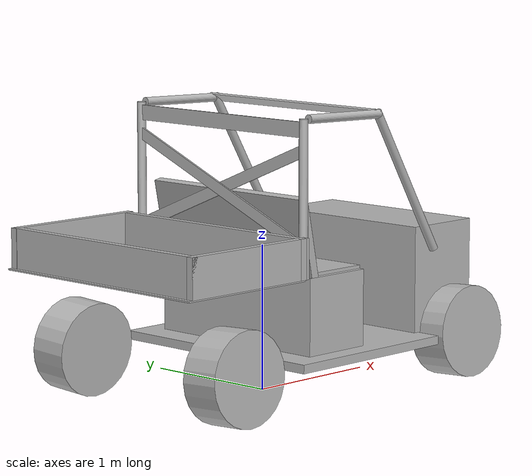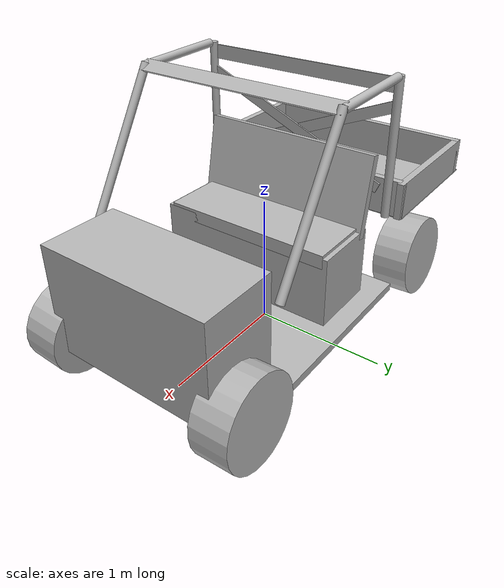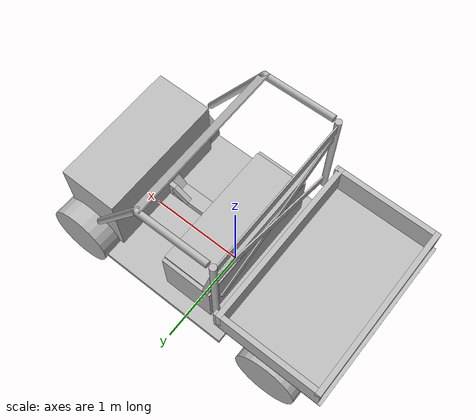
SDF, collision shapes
<sdf version='1.6'>
  <model name='rover_lidar'>
    <include>
      <uri>model://rover</uri>
    </include>

    <include>
      <uri>model://rplidar</uri>
      <pose>1.5 0 .5 0 0 0</pose>
    </include>

    <joint name="lidar_joint" type="revolute">
      <parent>rover::base_link</parent>
      <child>rplidar::link</child>
      <axis>
        <xyz>0 0 1</xyz>
        <limit>
          <upper>0</upper>
          <lower>0</lower>
        </limit>
      </axis>
    </joint>
  </model>
</sdf>
